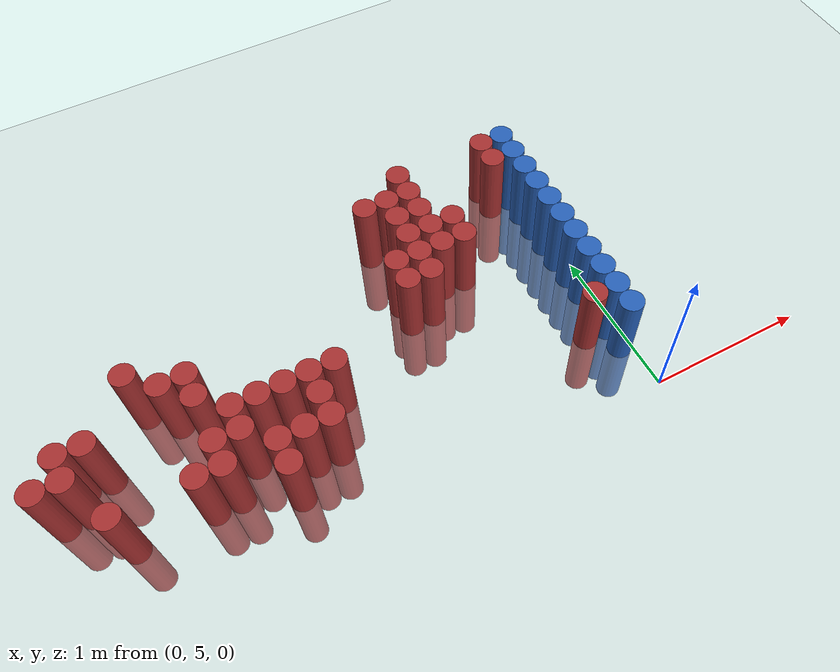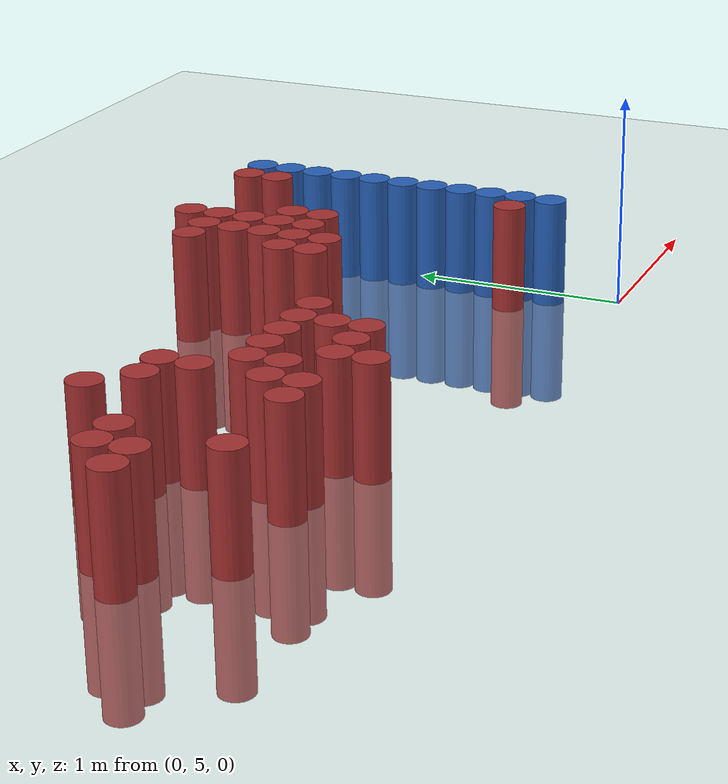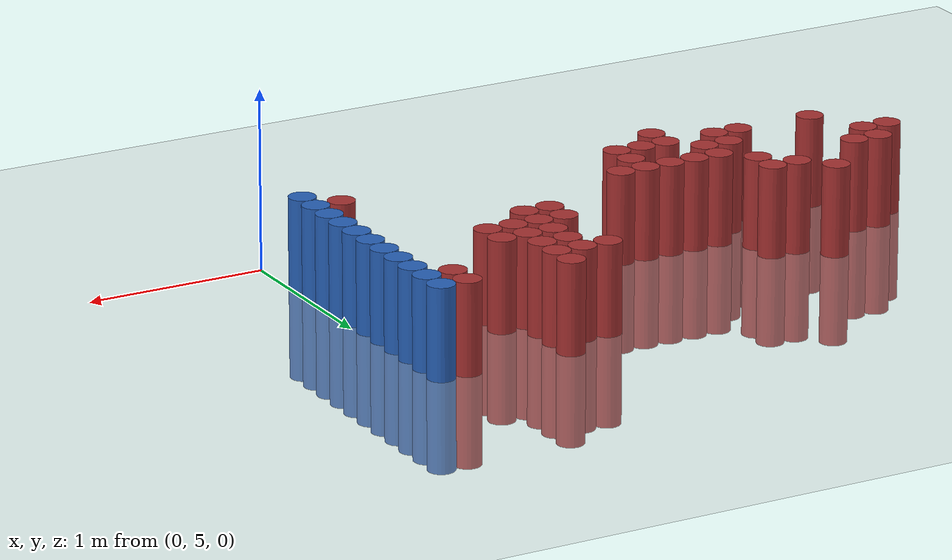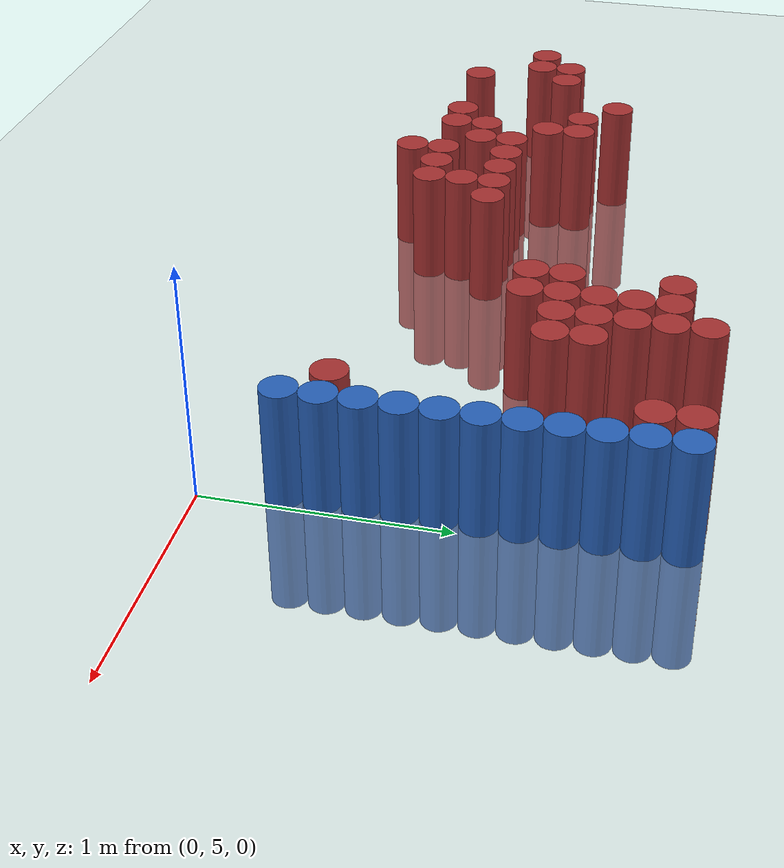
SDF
<sdf version="1.6">
 <world name="default">
  <model name="ground_plane">
   <static>1</static>
   <link name="link">
    <collision name="collision">
     <geometry><plane><normal>0 0 1</normal><size>100 100</size></plane></geometry>
     <surface><friction><ode><mu>100</mu><mu2>50</mu2></ode></friction></surface>
    </collision>
    <visual name="visual">
     <cast_shadows>0</cast_shadows>
     <geometry><plane><normal>0 0 1</normal><size>100 100</size></plane></geometry>
     <material>
      <script><uri>file://media/materials/scripts/gazebo.material</uri><name>Gazebo/Grey</name></script>
     </material>
    </visual>
   </link>
  </model>
  <model name="unit_cylinder_152">
   <static>1</static>
   <pose>-3.375000 5.775000 0.000000 0.000000 0.000000 0.000000</pose>
   <link name="link">
    <inertial>
     <mass>1</mass>
     <inertia><ixx>0.145833</ixx><ixy>0</ixy><ixz>0</ixz><iyy>0.145833</iyy><iyz>0</iyz><izz>0.125</izz></inertia>
    </inertial>
    <collision name="collision">
     <geometry><cylinder><radius>0.075000</radius><length>1</length></cylinder></geometry>
    </collision>
    <visual name="visual">
     <geometry><cylinder><radius>0.075000</radius><length>1</length></cylinder></geometry>
     <material>
      <ambient>0.648000 0.192000 0.192000 1</ambient>
      <diffuse>0.648000 0.192000 0.192000 1</diffuse>
     </material>
     <material>
      <script><name>Gazebo/Grey</name><uri>file://media/materials/scripts/gazebo.material</uri></script>
     </material>
    </visual>
   </link>
  </model>
  <model name="unit_cylinder_154">
   <static>1</static>
   <pose>-3.225000 5.775000 0.000000 0.000000 0.000000 0.000000</pose>
   <link name="link">
    <inertial>
     <mass>1</mass>
     <inertia><ixx>0.145833</ixx><ixy>0</ixy><ixz>0</ixz><iyy>0.145833</iyy><iyz>0</iyz><izz>0.125</izz></inertia>
    </inertial>
    <collision name="collision">
     <geometry><cylinder><radius>0.075000</radius><length>1</length></cylinder></geometry>
    </collision>
    <visual name="visual">
     <geometry><cylinder><radius>0.075000</radius><length>1</length></cylinder></geometry>
     <material>
      <ambient>0.648000 0.192000 0.192000 1</ambient>
      <diffuse>0.648000 0.192000 0.192000 1</diffuse>
     </material>
     <material>
      <script><name>Gazebo/Grey</name><uri>file://media/materials/scripts/gazebo.material</uri></script>
     </material>
    </visual>
   </link>
  </model>
  <model name="unit_cylinder_155">
   <static>1</static>
   <pose>-3.225000 5.925000 0.000000 0.000000 0.000000 0.000000</pose>
   <link name="link">
    <inertial>
     <mass>1</mass>
     <inertia><ixx>0.145833</ixx><ixy>0</ixy><ixz>0</ixz><iyy>0.145833</iyy><iyz>0</iyz><izz>0.125</izz></inertia>
    </inertial>
    <collision name="collision">
     <geometry><cylinder><radius>0.075000</radius><length>1</length></cylinder></geometry>
    </collision>
    <visual name="visual">
     <geometry><cylinder><radius>0.075000</radius><length>1</length></cylinder></geometry>
     <material>
      <ambient>0.648000 0.192000 0.192000 1</ambient>
      <diffuse>0.648000 0.192000 0.192000 1</diffuse>
     </material>
     <material>
      <script><name>Gazebo/Grey</name><uri>file://media/materials/scripts/gazebo.material</uri></script>
     </material>
    </visual>
   </link>
  </model>
  <model name="unit_cylinder_157">
   <static>1</static>
   <pose>-3.075000 5.475000 0.000000 0.000000 0.000000 0.000000</pose>
   <link name="link">
    <inertial>
     <mass>1</mass>
     <inertia><ixx>0.145833</ixx><ixy>0</ixy><ixz>0</ixz><iyy>0.145833</iyy><iyz>0</iyz><izz>0.125</izz></inertia>
    </inertial>
    <collision name="collision">
     <geometry><cylinder><radius>0.075000</radius><length>1</length></cylinder></geometry>
    </collision>
    <visual name="visual">
     <geometry><cylinder><radius>0.075000</radius><length>1</length></cylinder></geometry>
     <material>
      <ambient>0.648000 0.192000 0.192000 1</ambient>
      <diffuse>0.648000 0.192000 0.192000 1</diffuse>
     </material>
     <material>
      <script><name>Gazebo/Grey</name><uri>file://media/materials/scripts/gazebo.material</uri></script>
     </material>
    </visual>
   </link>
  </model>
  <model name="unit_cylinder_158">
   <static>1</static>
   <pose>-3.075000 5.925000 0.000000 0.000000 0.000000 0.000000</pose>
   <link name="link">
    <inertial>
     <mass>1</mass>
     <inertia><ixx>0.145833</ixx><ixy>0</ixy><ixz>0</ixz><iyy>0.145833</iyy><iyz>0</iyz><izz>0.125</izz></inertia>
    </inertial>
    <collision name="collision">
     <geometry><cylinder><radius>0.075000</radius><length>1</length></cylinder></geometry>
    </collision>
    <visual name="visual">
     <geometry><cylinder><radius>0.075000</radius><length>1</length></cylinder></geometry>
     <material>
      <ambient>0.648000 0.192000 0.192000 1</ambient>
      <diffuse>0.648000 0.192000 0.192000 1</diffuse>
     </material>
     <material>
      <script><name>Gazebo/Grey</name><uri>file://media/materials/scripts/gazebo.material</uri></script>
     </material>
    </visual>
   </link>
  </model>
  <model name="unit_cylinder_169">
   <static>1</static>
   <pose>-2.775000 6.225000 0.000000 0.000000 0.000000 0.000000</pose>
   <link name="link">
    <inertial>
     <mass>1</mass>
     <inertia><ixx>0.145833</ixx><ixy>0</ixy><ixz>0</ixz><iyy>0.145833</iyy><iyz>0</iyz><izz>0.125</izz></inertia>
    </inertial>
    <collision name="collision">
     <geometry><cylinder><radius>0.075000</radius><length>1</length></cylinder></geometry>
    </collision>
    <visual name="visual">
     <geometry><cylinder><radius>0.075000</radius><length>1</length></cylinder></geometry>
     <material>
      <ambient>0.648000 0.192000 0.192000 1</ambient>
      <diffuse>0.648000 0.192000 0.192000 1</diffuse>
     </material>
     <material>
      <script><name>Gazebo/Grey</name><uri>file://media/materials/scripts/gazebo.material</uri></script>
     </material>
    </visual>
   </link>
  </model>
  <model name="unit_cylinder_173">
   <static>1</static>
   <pose>-2.625000 5.475000 0.000000 0.000000 0.000000 0.000000</pose>
   <link name="link">
    <inertial>
     <mass>1</mass>
     <inertia><ixx>0.145833</ixx><ixy>0</ixy><ixz>0</ixz><iyy>0.145833</iyy><iyz>0</iyz><izz>0.125</izz></inertia>
    </inertial>
    <collision name="collision">
     <geometry><cylinder><radius>0.075000</radius><length>1</length></cylinder></geometry>
    </collision>
    <visual name="visual">
     <geometry><cylinder><radius>0.075000</radius><length>1</length></cylinder></geometry>
     <material>
      <ambient>0.648000 0.192000 0.192000 1</ambient>
      <diffuse>0.648000 0.192000 0.192000 1</diffuse>
     </material>
     <material>
      <script><name>Gazebo/Grey</name><uri>file://media/materials/scripts/gazebo.material</uri></script>
     </material>
    </visual>
   </link>
  </model>
  <model name="unit_cylinder_174">
   <static>1</static>
   <pose>-2.625000 6.075000 0.000000 0.000000 0.000000 0.000000</pose>
   <link name="link">
    <inertial>
     <mass>1</mass>
     <inertia><ixx>0.145833</ixx><ixy>0</ixy><ixz>0</ixz><iyy>0.145833</iyy><iyz>0</iyz><izz>0.125</izz></inertia>
    </inertial>
    <collision name="collision">
     <geometry><cylinder><radius>0.075000</radius><length>1</length></cylinder></geometry>
    </collision>
    <visual name="visual">
     <geometry><cylinder><radius>0.075000</radius><length>1</length></cylinder></geometry>
     <material>
      <ambient>0.648000 0.192000 0.192000 1</ambient>
      <diffuse>0.648000 0.192000 0.192000 1</diffuse>
     </material>
     <material>
      <script><name>Gazebo/Grey</name><uri>file://media/materials/scripts/gazebo.material</uri></script>
     </material>
    </visual>
   </link>
  </model>
  <model name="unit_cylinder_179">
   <static>1</static>
   <pose>-2.475000 5.475000 0.000000 0.000000 0.000000 0.000000</pose>
   <link name="link">
    <inertial>
     <mass>1</mass>
     <inertia><ixx>0.145833</ixx><ixy>0</ixy><ixz>0</ixz><iyy>0.145833</iyy><iyz>0</iyz><izz>0.125</izz></inertia>
    </inertial>
    <collision name="collision">
     <geometry><cylinder><radius>0.075000</radius><length>1</length></cylinder></geometry>
    </collision>
    <visual name="visual">
     <geometry><cylinder><radius>0.075000</radius><length>1</length></cylinder></geometry>
     <material>
      <ambient>0.648000 0.192000 0.192000 1</ambient>
      <diffuse>0.648000 0.192000 0.192000 1</diffuse>
     </material>
     <material>
      <script><name>Gazebo/Grey</name><uri>file://media/materials/scripts/gazebo.material</uri></script>
     </material>
    </visual>
   </link>
  </model>
  <model name="unit_cylinder_180">
   <static>1</static>
   <pose>-2.475000 5.625000 0.000000 0.000000 0.000000 0.000000</pose>
   <link name="link">
    <inertial>
     <mass>1</mass>
     <inertia><ixx>0.145833</ixx><ixy>0</ixy><ixz>0</ixz><iyy>0.145833</iyy><iyz>0</iyz><izz>0.125</izz></inertia>
    </inertial>
    <collision name="collision">
     <geometry><cylinder><radius>0.075000</radius><length>1</length></cylinder></geometry>
    </collision>
    <visual name="visual">
     <geometry><cylinder><radius>0.075000</radius><length>1</length></cylinder></geometry>
     <material>
      <ambient>0.648000 0.192000 0.192000 1</ambient>
      <diffuse>0.648000 0.192000 0.192000 1</diffuse>
     </material>
     <material>
      <script><name>Gazebo/Grey</name><uri>file://media/materials/scripts/gazebo.material</uri></script>
     </material>
    </visual>
   </link>
  </model>
  <model name="unit_cylinder_181">
   <static>1</static>
   <pose>-2.475000 5.925000 0.000000 0.000000 0.000000 0.000000</pose>
   <link name="link">
    <inertial>
     <mass>1</mass>
     <inertia><ixx>0.145833</ixx><ixy>0</ixy><ixz>0</ixz><iyy>0.145833</iyy><iyz>0</iyz><izz>0.125</izz></inertia>
    </inertial>
    <collision name="collision">
     <geometry><cylinder><radius>0.075000</radius><length>1</length></cylinder></geometry>
    </collision>
    <visual name="visual">
     <geometry><cylinder><radius>0.075000</radius><length>1</length></cylinder></geometry>
     <material>
      <ambient>0.648000 0.192000 0.192000 1</ambient>
      <diffuse>0.648000 0.192000 0.192000 1</diffuse>
     </material>
     <material>
      <script><name>Gazebo/Grey</name><uri>file://media/materials/scripts/gazebo.material</uri></script>
     </material>
    </visual>
   </link>
  </model>
  <model name="unit_cylinder_182">
   <static>1</static>
   <pose>-2.475000 6.075000 0.000000 0.000000 0.000000 0.000000</pose>
   <link name="link">
    <inertial>
     <mass>1</mass>
     <inertia><ixx>0.145833</ixx><ixy>0</ixy><ixz>0</ixz><iyy>0.145833</iyy><iyz>0</iyz><izz>0.125</izz></inertia>
    </inertial>
    <collision name="collision">
     <geometry><cylinder><radius>0.075000</radius><length>1</length></cylinder></geometry>
    </collision>
    <visual name="visual">
     <geometry><cylinder><radius>0.075000</radius><length>1</length></cylinder></geometry>
     <material>
      <ambient>0.648000 0.192000 0.192000 1</ambient>
      <diffuse>0.648000 0.192000 0.192000 1</diffuse>
     </material>
     <material>
      <script><name>Gazebo/Grey</name><uri>file://media/materials/scripts/gazebo.material</uri></script>
     </material>
    </visual>
   </link>
  </model>
  <model name="unit_cylinder_187">
   <static>1</static>
   <pose>-2.325000 5.625000 0.000000 0.000000 0.000000 0.000000</pose>
   <link name="link">
    <inertial>
     <mass>1</mass>
     <inertia><ixx>0.145833</ixx><ixy>0</ixy><ixz>0</ixz><iyy>0.145833</iyy><iyz>0</iyz><izz>0.125</izz></inertia>
    </inertial>
    <collision name="collision">
     <geometry><cylinder><radius>0.075000</radius><length>1</length></cylinder></geometry>
    </collision>
    <visual name="visual">
     <geometry><cylinder><radius>0.075000</radius><length>1</length></cylinder></geometry>
     <material>
      <ambient>0.648000 0.192000 0.192000 1</ambient>
      <diffuse>0.648000 0.192000 0.192000 1</diffuse>
     </material>
     <material>
      <script><name>Gazebo/Grey</name><uri>file://media/materials/scripts/gazebo.material</uri></script>
     </material>
    </visual>
   </link>
  </model>
  <model name="unit_cylinder_188">
   <static>1</static>
   <pose>-2.325000 5.775000 0.000000 0.000000 0.000000 0.000000</pose>
   <link name="link">
    <inertial>
     <mass>1</mass>
     <inertia><ixx>0.145833</ixx><ixy>0</ixy><ixz>0</ixz><iyy>0.145833</iyy><iyz>0</iyz><izz>0.125</izz></inertia>
    </inertial>
    <collision name="collision">
     <geometry><cylinder><radius>0.075000</radius><length>1</length></cylinder></geometry>
    </collision>
    <visual name="visual">
     <geometry><cylinder><radius>0.075000</radius><length>1</length></cylinder></geometry>
     <material>
      <ambient>0.648000 0.192000 0.192000 1</ambient>
      <diffuse>0.648000 0.192000 0.192000 1</diffuse>
     </material>
     <material>
      <script><name>Gazebo/Grey</name><uri>file://media/materials/scripts/gazebo.material</uri></script>
     </material>
    </visual>
   </link>
  </model>
  <model name="unit_cylinder_190">
   <static>1</static>
   <pose>-2.175000 5.325000 0.000000 0.000000 0.000000 0.000000</pose>
   <link name="link">
    <inertial>
     <mass>1</mass>
     <inertia><ixx>0.145833</ixx><ixy>0</ixy><ixz>0</ixz><iyy>0.145833</iyy><iyz>0</iyz><izz>0.125</izz></inertia>
    </inertial>
    <collision name="collision">
     <geometry><cylinder><radius>0.075000</radius><length>1</length></cylinder></geometry>
    </collision>
    <visual name="visual">
     <geometry><cylinder><radius>0.075000</radius><length>1</length></cylinder></geometry>
     <material>
      <ambient>0.648000 0.192000 0.192000 1</ambient>
      <diffuse>0.648000 0.192000 0.192000 1</diffuse>
     </material>
     <material>
      <script><name>Gazebo/Grey</name><uri>file://media/materials/scripts/gazebo.material</uri></script>
     </material>
    </visual>
   </link>
  </model>
  <model name="unit_cylinder_191">
   <static>1</static>
   <pose>-2.175000 5.475000 0.000000 0.000000 0.000000 0.000000</pose>
   <link name="link">
    <inertial>
     <mass>1</mass>
     <inertia><ixx>0.145833</ixx><ixy>0</ixy><ixz>0</ixz><iyy>0.145833</iyy><iyz>0</iyz><izz>0.125</izz></inertia>
    </inertial>
    <collision name="collision">
     <geometry><cylinder><radius>0.075000</radius><length>1</length></cylinder></geometry>
    </collision>
    <visual name="visual">
     <geometry><cylinder><radius>0.075000</radius><length>1</length></cylinder></geometry>
     <material>
      <ambient>0.648000 0.192000 0.192000 1</ambient>
      <diffuse>0.648000 0.192000 0.192000 1</diffuse>
     </material>
     <material>
      <script><name>Gazebo/Grey</name><uri>file://media/materials/scripts/gazebo.material</uri></script>
     </material>
    </visual>
   </link>
  </model>
  <model name="unit_cylinder_192">
   <static>1</static>
   <pose>-2.175000 5.775000 0.000000 0.000000 0.000000 0.000000</pose>
   <link name="link">
    <inertial>
     <mass>1</mass>
     <inertia><ixx>0.145833</ixx><ixy>0</ixy><ixz>0</ixz><iyy>0.145833</iyy><iyz>0</iyz><izz>0.125</izz></inertia>
    </inertial>
    <collision name="collision">
     <geometry><cylinder><radius>0.075000</radius><length>1</length></cylinder></geometry>
    </collision>
    <visual name="visual">
     <geometry><cylinder><radius>0.075000</radius><length>1</length></cylinder></geometry>
     <material>
      <ambient>0.648000 0.192000 0.192000 1</ambient>
      <diffuse>0.648000 0.192000 0.192000 1</diffuse>
     </material>
     <material>
      <script><name>Gazebo/Grey</name><uri>file://media/materials/scripts/gazebo.material</uri></script>
     </material>
    </visual>
   </link>
  </model>
  <model name="unit_cylinder_193">
   <static>1</static>
   <pose>-2.025000 5.475000 0.000000 0.000000 0.000000 0.000000</pose>
   <link name="link">
    <inertial>
     <mass>1</mass>
     <inertia><ixx>0.145833</ixx><ixy>0</ixy><ixz>0</ixz><iyy>0.145833</iyy><iyz>0</iyz><izz>0.125</izz></inertia>
    </inertial>
    <collision name="collision">
     <geometry><cylinder><radius>0.075000</radius><length>1</length></cylinder></geometry>
    </collision>
    <visual name="visual">
     <geometry><cylinder><radius>0.075000</radius><length>1</length></cylinder></geometry>
     <material>
      <ambient>0.648000 0.192000 0.192000 1</ambient>
      <diffuse>0.648000 0.192000 0.192000 1</diffuse>
     </material>
     <material>
      <script><name>Gazebo/Grey</name><uri>file://media/materials/scripts/gazebo.material</uri></script>
     </material>
    </visual>
   </link>
  </model>
  <model name="unit_cylinder_194">
   <static>1</static>
   <pose>-2.025000 5.775000 0.000000 0.000000 0.000000 0.000000</pose>
   <link name="link">
    <inertial>
     <mass>1</mass>
     <inertia><ixx>0.145833</ixx><ixy>0</ixy><ixz>0</ixz><iyy>0.145833</iyy><iyz>0</iyz><izz>0.125</izz></inertia>
    </inertial>
    <collision name="collision">
     <geometry><cylinder><radius>0.075000</radius><length>1</length></cylinder></geometry>
    </collision>
    <visual name="visual">
     <geometry><cylinder><radius>0.075000</radius><length>1</length></cylinder></geometry>
     <material>
      <ambient>0.648000 0.192000 0.192000 1</ambient>
      <diffuse>0.648000 0.192000 0.192000 1</diffuse>
     </material>
     <material>
      <script><name>Gazebo/Grey</name><uri>file://media/materials/scripts/gazebo.material</uri></script>
     </material>
    </visual>
   </link>
  </model>
  <model name="unit_cylinder_195">
   <static>1</static>
   <pose>-1.875000 5.475000 0.000000 0.000000 0.000000 0.000000</pose>
   <link name="link">
    <inertial>
     <mass>1</mass>
     <inertia><ixx>0.145833</ixx><ixy>0</ixy><ixz>0</ixz><iyy>0.145833</iyy><iyz>0</iyz><izz>0.125</izz></inertia>
    </inertial>
    <collision name="collision">
     <geometry><cylinder><radius>0.075000</radius><length>1</length></cylinder></geometry>
    </collision>
    <visual name="visual">
     <geometry><cylinder><radius>0.075000</radius><length>1</length></cylinder></geometry>
     <material>
      <ambient>0.648000 0.192000 0.192000 1</ambient>
      <diffuse>0.648000 0.192000 0.192000 1</diffuse>
     </material>
     <material>
      <script><name>Gazebo/Grey</name><uri>file://media/materials/scripts/gazebo.material</uri></script>
     </material>
    </visual>
   </link>
  </model>
  <model name="unit_cylinder_196">
   <static>1</static>
   <pose>-1.875000 5.625000 0.000000 0.000000 0.000000 0.000000</pose>
   <link name="link">
    <inertial>
     <mass>1</mass>
     <inertia><ixx>0.145833</ixx><ixy>0</ixy><ixz>0</ixz><iyy>0.145833</iyy><iyz>0</iyz><izz>0.125</izz></inertia>
    </inertial>
    <collision name="collision">
     <geometry><cylinder><radius>0.075000</radius><length>1</length></cylinder></geometry>
    </collision>
    <visual name="visual">
     <geometry><cylinder><radius>0.075000</radius><length>1</length></cylinder></geometry>
     <material>
      <ambient>0.648000 0.192000 0.192000 1</ambient>
      <diffuse>0.648000 0.192000 0.192000 1</diffuse>
     </material>
     <material>
      <script><name>Gazebo/Grey</name><uri>file://media/materials/scripts/gazebo.material</uri></script>
     </material>
    </visual>
   </link>
  </model>
  <model name="unit_cylinder_197">
   <static>1</static>
   <pose>-1.875000 5.775000 0.000000 0.000000 0.000000 0.000000</pose>
   <link name="link">
    <inertial>
     <mass>1</mass>
     <inertia><ixx>0.145833</ixx><ixy>0</ixy><ixz>0</ixz><iyy>0.145833</iyy><iyz>0</iyz><izz>0.125</izz></inertia>
    </inertial>
    <collision name="collision">
     <geometry><cylinder><radius>0.075000</radius><length>1</length></cylinder></geometry>
    </collision>
    <visual name="visual">
     <geometry><cylinder><radius>0.075000</radius><length>1</length></cylinder></geometry>
     <material>
      <ambient>0.648000 0.192000 0.192000 1</ambient>
      <diffuse>0.648000 0.192000 0.192000 1</diffuse>
     </material>
     <material>
      <script><name>Gazebo/Grey</name><uri>file://media/materials/scripts/gazebo.material</uri></script>
     </material>
    </visual>
   </link>
  </model>
  <model name="unit_cylinder_198">
   <static>1</static>
   <pose>-1.725000 5.775000 0.000000 0.000000 0.000000 0.000000</pose>
   <link name="link">
    <inertial>
     <mass>1</mass>
     <inertia><ixx>0.145833</ixx><ixy>0</ixy><ixz>0</ixz><iyy>0.145833</iyy><iyz>0</iyz><izz>0.125</izz></inertia>
    </inertial>
    <collision name="collision">
     <geometry><cylinder><radius>0.075000</radius><length>1</length></cylinder></geometry>
    </collision>
    <visual name="visual">
     <geometry><cylinder><radius>0.075000</radius><length>1</length></cylinder></geometry>
     <material>
      <ambient>0.648000 0.192000 0.192000 1</ambient>
      <diffuse>0.648000 0.192000 0.192000 1</diffuse>
     </material>
     <material>
      <script><name>Gazebo/Grey</name><uri>file://media/materials/scripts/gazebo.material</uri></script>
     </material>
    </visual>
   </link>
  </model>
  <model name="unit_cylinder_199">
   <static>1</static>
   <pose>-1.125000 6.075000 0.000000 0.000000 0.000000 0.000000</pose>
   <link name="link">
    <inertial>
     <mass>1</mass>
     <inertia><ixx>0.145833</ixx><ixy>0</ixy><ixz>0</ixz><iyy>0.145833</iyy><iyz>0</iyz><izz>0.125</izz></inertia>
    </inertial>
    <collision name="collision">
     <geometry><cylinder><radius>0.075000</radius><length>1</length></cylinder></geometry>
    </collision>
    <visual name="visual">
     <geometry><cylinder><radius>0.075000</radius><length>1</length></cylinder></geometry>
     <material>
      <ambient>0.648000 0.192000 0.192000 1</ambient>
      <diffuse>0.648000 0.192000 0.192000 1</diffuse>
     </material>
     <material>
      <script><name>Gazebo/Grey</name><uri>file://media/materials/scripts/gazebo.material</uri></script>
     </material>
    </visual>
   </link>
  </model>
  <model name="unit_cylinder_200">
   <static>1</static>
   <pose>-1.125000 6.225000 0.000000 0.000000 0.000000 0.000000</pose>
   <link name="link">
    <inertial>
     <mass>1</mass>
     <inertia><ixx>0.145833</ixx><ixy>0</ixy><ixz>0</ixz><iyy>0.145833</iyy><iyz>0</iyz><izz>0.125</izz></inertia>
    </inertial>
    <collision name="collision">
     <geometry><cylinder><radius>0.075000</radius><length>1</length></cylinder></geometry>
    </collision>
    <visual name="visual">
     <geometry><cylinder><radius>0.075000</radius><length>1</length></cylinder></geometry>
     <material>
      <ambient>0.648000 0.192000 0.192000 1</ambient>
      <diffuse>0.648000 0.192000 0.192000 1</diffuse>
     </material>
     <material>
      <script><name>Gazebo/Grey</name><uri>file://media/materials/scripts/gazebo.material</uri></script>
     </material>
    </visual>
   </link>
  </model>
  <model name="unit_cylinder_201">
   <static>1</static>
   <pose>-1.125000 6.675000 0.000000 0.000000 0.000000 0.000000</pose>
   <link name="link">
    <inertial>
     <mass>1</mass>
     <inertia><ixx>0.145833</ixx><ixy>0</ixy><ixz>0</ixz><iyy>0.145833</iyy><iyz>0</iyz><izz>0.125</izz></inertia>
    </inertial>
    <collision name="collision">
     <geometry><cylinder><radius>0.075000</radius><length>1</length></cylinder></geometry>
    </collision>
    <visual name="visual">
     <geometry><cylinder><radius>0.075000</radius><length>1</length></cylinder></geometry>
     <material>
      <ambient>0.648000 0.192000 0.192000 1</ambient>
      <diffuse>0.648000 0.192000 0.192000 1</diffuse>
     </material>
     <material>
      <script><name>Gazebo/Grey</name><uri>file://media/materials/scripts/gazebo.material</uri></script>
     </material>
    </visual>
   </link>
  </model>
  <model name="unit_cylinder_203">
   <static>1</static>
   <pose>-0.975000 6.075000 0.000000 0.000000 0.000000 0.000000</pose>
   <link name="link">
    <inertial>
     <mass>1</mass>
     <inertia><ixx>0.145833</ixx><ixy>0</ixy><ixz>0</ixz><iyy>0.145833</iyy><iyz>0</iyz><izz>0.125</izz></inertia>
    </inertial>
    <collision name="collision">
     <geometry><cylinder><radius>0.075000</radius><length>1</length></cylinder></geometry>
    </collision>
    <visual name="visual">
     <geometry><cylinder><radius>0.075000</radius><length>1</length></cylinder></geometry>
     <material>
      <ambient>0.648000 0.192000 0.192000 1</ambient>
      <diffuse>0.648000 0.192000 0.192000 1</diffuse>
     </material>
     <material>
      <script><name>Gazebo/Grey</name><uri>file://media/materials/scripts/gazebo.material</uri></script>
     </material>
    </visual>
   </link>
  </model>
  <model name="unit_cylinder_204">
   <static>1</static>
   <pose>-0.975000 6.225000 0.000000 0.000000 0.000000 0.000000</pose>
   <link name="link">
    <inertial>
     <mass>1</mass>
     <inertia><ixx>0.145833</ixx><ixy>0</ixy><ixz>0</ixz><iyy>0.145833</iyy><iyz>0</iyz><izz>0.125</izz></inertia>
    </inertial>
    <collision name="collision">
     <geometry><cylinder><radius>0.075000</radius><length>1</length></cylinder></geometry>
    </collision>
    <visual name="visual">
     <geometry><cylinder><radius>0.075000</radius><length>1</length></cylinder></geometry>
     <material>
      <ambient>0.648000 0.192000 0.192000 1</ambient>
      <diffuse>0.648000 0.192000 0.192000 1</diffuse>
     </material>
     <material>
      <script><name>Gazebo/Grey</name><uri>file://media/materials/scripts/gazebo.material</uri></script>
     </material>
    </visual>
   </link>
  </model>
  <model name="unit_cylinder_205">
   <static>1</static>
   <pose>-0.975000 6.375000 0.000000 0.000000 0.000000 0.000000</pose>
   <link name="link">
    <inertial>
     <mass>1</mass>
     <inertia><ixx>0.145833</ixx><ixy>0</ixy><ixz>0</ixz><iyy>0.145833</iyy><iyz>0</iyz><izz>0.125</izz></inertia>
    </inertial>
    <collision name="collision">
     <geometry><cylinder><radius>0.075000</radius><length>1</length></cylinder></geometry>
    </collision>
    <visual name="visual">
     <geometry><cylinder><radius>0.075000</radius><length>1</length></cylinder></geometry>
     <material>
      <ambient>0.648000 0.192000 0.192000 1</ambient>
      <diffuse>0.648000 0.192000 0.192000 1</diffuse>
     </material>
     <material>
      <script><name>Gazebo/Grey</name><uri>file://media/materials/scripts/gazebo.material</uri></script>
     </material>
    </visual>
   </link>
  </model>
  <model name="unit_cylinder_206">
   <static>1</static>
   <pose>-0.975000 6.525000 0.000000 0.000000 0.000000 0.000000</pose>
   <link name="link">
    <inertial>
     <mass>1</mass>
     <inertia><ixx>0.145833</ixx><ixy>0</ixy><ixz>0</ixz><iyy>0.145833</iyy><iyz>0</iyz><izz>0.125</izz></inertia>
    </inertial>
    <collision name="collision">
     <geometry><cylinder><radius>0.075000</radius><length>1</length></cylinder></geometry>
    </collision>
    <visual name="visual">
     <geometry><cylinder><radius>0.075000</radius><length>1</length></cylinder></geometry>
     <material>
      <ambient>0.648000 0.192000 0.192000 1</ambient>
      <diffuse>0.648000 0.192000 0.192000 1</diffuse>
     </material>
     <material>
      <script><name>Gazebo/Grey</name><uri>file://media/materials/scripts/gazebo.material</uri></script>
     </material>
    </visual>
   </link>
  </model>
  <model name="unit_cylinder_207">
   <static>1</static>
   <pose>-0.975000 6.675000 0.000000 0.000000 0.000000 0.000000</pose>
   <link name="link">
    <inertial>
     <mass>1</mass>
     <inertia><ixx>0.145833</ixx><ixy>0</ixy><ixz>0</ixz><iyy>0.145833</iyy><iyz>0</iyz><izz>0.125</izz></inertia>
    </inertial>
    <collision name="collision">
     <geometry><cylinder><radius>0.075000</radius><length>1</length></cylinder></geometry>
    </collision>
    <visual name="visual">
     <geometry><cylinder><radius>0.075000</radius><length>1</length></cylinder></geometry>
     <material>
      <ambient>0.648000 0.192000 0.192000 1</ambient>
      <diffuse>0.648000 0.192000 0.192000 1</diffuse>
     </material>
     <material>
      <script><name>Gazebo/Grey</name><uri>file://media/materials/scripts/gazebo.material</uri></script>
     </material>
    </visual>
   </link>
  </model>
  <model name="unit_cylinder_210">
   <static>1</static>
   <pose>-0.825000 6.225000 0.000000 0.000000 0.000000 0.000000</pose>
   <link name="link">
    <inertial>
     <mass>1</mass>
     <inertia><ixx>0.145833</ixx><ixy>0</ixy><ixz>0</ixz><iyy>0.145833</iyy><iyz>0</iyz><izz>0.125</izz></inertia>
    </inertial>
    <collision name="collision">
     <geometry><cylinder><radius>0.075000</radius><length>1</length></cylinder></geometry>
    </collision>
    <visual name="visual">
     <geometry><cylinder><radius>0.075000</radius><length>1</length></cylinder></geometry>
     <material>
      <ambient>0.648000 0.192000 0.192000 1</ambient>
      <diffuse>0.648000 0.192000 0.192000 1</diffuse>
     </material>
     <material>
      <script><name>Gazebo/Grey</name><uri>file://media/materials/scripts/gazebo.material</uri></script>
     </material>
    </visual>
   </link>
  </model>
  <model name="unit_cylinder_211">
   <static>1</static>
   <pose>-0.825000 6.375000 0.000000 0.000000 0.000000 0.000000</pose>
   <link name="link">
    <inertial>
     <mass>1</mass>
     <inertia><ixx>0.145833</ixx><ixy>0</ixy><ixz>0</ixz><iyy>0.145833</iyy><iyz>0</iyz><izz>0.125</izz></inertia>
    </inertial>
    <collision name="collision">
     <geometry><cylinder><radius>0.075000</radius><length>1</length></cylinder></geometry>
    </collision>
    <visual name="visual">
     <geometry><cylinder><radius>0.075000</radius><length>1</length></cylinder></geometry>
     <material>
      <ambient>0.648000 0.192000 0.192000 1</ambient>
      <diffuse>0.648000 0.192000 0.192000 1</diffuse>
     </material>
     <material>
      <script><name>Gazebo/Grey</name><uri>file://media/materials/scripts/gazebo.material</uri></script>
     </material>
    </visual>
   </link>
  </model>
  <model name="unit_cylinder_212">
   <static>1</static>
   <pose>-0.825000 6.525000 0.000000 0.000000 0.000000 0.000000</pose>
   <link name="link">
    <inertial>
     <mass>1</mass>
     <inertia><ixx>0.145833</ixx><ixy>0</ixy><ixz>0</ixz><iyy>0.145833</iyy><iyz>0</iyz><izz>0.125</izz></inertia>
    </inertial>
    <collision name="collision">
     <geometry><cylinder><radius>0.075000</radius><length>1</length></cylinder></geometry>
    </collision>
    <visual name="visual">
     <geometry><cylinder><radius>0.075000</radius><length>1</length></cylinder></geometry>
     <material>
      <ambient>0.648000 0.192000 0.192000 1</ambient>
      <diffuse>0.648000 0.192000 0.192000 1</diffuse>
     </material>
     <material>
      <script><name>Gazebo/Grey</name><uri>file://media/materials/scripts/gazebo.material</uri></script>
     </material>
    </visual>
   </link>
  </model>
  <model name="unit_cylinder_213">
   <static>1</static>
   <pose>-0.825000 6.675000 0.000000 0.000000 0.000000 0.000000</pose>
   <link name="link">
    <inertial>
     <mass>1</mass>
     <inertia><ixx>0.145833</ixx><ixy>0</ixy><ixz>0</ixz><iyy>0.145833</iyy><iyz>0</iyz><izz>0.125</izz></inertia>
    </inertial>
    <collision name="collision">
     <geometry><cylinder><radius>0.075000</radius><length>1</length></cylinder></geometry>
    </collision>
    <visual name="visual">
     <geometry><cylinder><radius>0.075000</radius><length>1</length></cylinder></geometry>
     <material>
      <ambient>0.648000 0.192000 0.192000 1</ambient>
      <diffuse>0.648000 0.192000 0.192000 1</diffuse>
     </material>
     <material>
      <script><name>Gazebo/Grey</name><uri>file://media/materials/scripts/gazebo.material</uri></script>
     </material>
    </visual>
   </link>
  </model>
  <model name="unit_cylinder_214">
   <static>1</static>
   <pose>-0.825000 6.825000 0.000000 0.000000 0.000000 0.000000</pose>
   <link name="link">
    <inertial>
     <mass>1</mass>
     <inertia><ixx>0.145833</ixx><ixy>0</ixy><ixz>0</ixz><iyy>0.145833</iyy><iyz>0</iyz><izz>0.125</izz></inertia>
    </inertial>
    <collision name="collision">
     <geometry><cylinder><radius>0.075000</radius><length>1</length></cylinder></geometry>
    </collision>
    <visual name="visual">
     <geometry><cylinder><radius>0.075000</radius><length>1</length></cylinder></geometry>
     <material>
      <ambient>0.648000 0.192000 0.192000 1</ambient>
      <diffuse>0.648000 0.192000 0.192000 1</diffuse>
     </material>
     <material>
      <script><name>Gazebo/Grey</name><uri>file://media/materials/scripts/gazebo.material</uri></script>
     </material>
    </visual>
   </link>
  </model>
  <model name="unit_cylinder_215">
   <static>1</static>
   <pose>-0.675000 6.225000 0.000000 0.000000 0.000000 0.000000</pose>
   <link name="link">
    <inertial>
     <mass>1</mass>
     <inertia><ixx>0.145833</ixx><ixy>0</ixy><ixz>0</ixz><iyy>0.145833</iyy><iyz>0</iyz><izz>0.125</izz></inertia>
    </inertial>
    <collision name="collision">
     <geometry><cylinder><radius>0.075000</radius><length>1</length></cylinder></geometry>
    </collision>
    <visual name="visual">
     <geometry><cylinder><radius>0.075000</radius><length>1</length></cylinder></geometry>
     <material>
      <ambient>0.648000 0.192000 0.192000 1</ambient>
      <diffuse>0.648000 0.192000 0.192000 1</diffuse>
     </material>
     <material>
      <script><name>Gazebo/Grey</name><uri>file://media/materials/scripts/gazebo.material</uri></script>
     </material>
    </visual>
   </link>
  </model>
  <model name="unit_cylinder_216">
   <static>1</static>
   <pose>-0.675000 6.375000 0.000000 0.000000 0.000000 0.000000</pose>
   <link name="link">
    <inertial>
     <mass>1</mass>
     <inertia><ixx>0.145833</ixx><ixy>0</ixy><ixz>0</ixz><iyy>0.145833</iyy><iyz>0</iyz><izz>0.125</izz></inertia>
    </inertial>
    <collision name="collision">
     <geometry><cylinder><radius>0.075000</radius><length>1</length></cylinder></geometry>
    </collision>
    <visual name="visual">
     <geometry><cylinder><radius>0.075000</radius><length>1</length></cylinder></geometry>
     <material>
      <ambient>0.648000 0.192000 0.192000 1</ambient>
      <diffuse>0.648000 0.192000 0.192000 1</diffuse>
     </material>
     <material>
      <script><name>Gazebo/Grey</name><uri>file://media/materials/scripts/gazebo.material</uri></script>
     </material>
    </visual>
   </link>
  </model>
  <model name="unit_cylinder_218">
   <static>1</static>
   <pose>-0.225000 5.475000 0.000000 0.000000 0.000000 0.000000</pose>
   <link name="link">
    <inertial>
     <mass>1</mass>
     <inertia><ixx>0.145833</ixx><ixy>0</ixy><ixz>0</ixz><iyy>0.145833</iyy><iyz>0</iyz><izz>0.125</izz></inertia>
    </inertial>
    <collision name="collision">
     <geometry><cylinder><radius>0.075000</radius><length>1</length></cylinder></geometry>
    </collision>
    <visual name="visual">
     <geometry><cylinder><radius>0.075000</radius><length>1</length></cylinder></geometry>
     <material>
      <ambient>0.648000 0.192000 0.192000 1</ambient>
      <diffuse>0.648000 0.192000 0.192000 1</diffuse>
     </material>
     <material>
      <script><name>Gazebo/Grey</name><uri>file://media/materials/scripts/gazebo.material</uri></script>
     </material>
    </visual>
   </link>
  </model>
  <model name="unit_cylinder_219">
   <static>1</static>
   <pose>-0.225000 6.675000 0.000000 0.000000 0.000000 0.000000</pose>
   <link name="link">
    <inertial>
     <mass>1</mass>
     <inertia><ixx>0.145833</ixx><ixy>0</ixy><ixz>0</ixz><iyy>0.145833</iyy><iyz>0</iyz><izz>0.125</izz></inertia>
    </inertial>
    <collision name="collision">
     <geometry><cylinder><radius>0.075000</radius><length>1</length></cylinder></geometry>
    </collision>
    <visual name="visual">
     <geometry><cylinder><radius>0.075000</radius><length>1</length></cylinder></geometry>
     <material>
      <ambient>0.648000 0.192000 0.192000 1</ambient>
      <diffuse>0.648000 0.192000 0.192000 1</diffuse>
     </material>
     <material>
      <script><name>Gazebo/Grey</name><uri>file://media/materials/scripts/gazebo.material</uri></script>
     </material>
    </visual>
   </link>
  </model>
  <model name="unit_cylinder_220">
   <static>1</static>
   <pose>-0.225000 6.825000 0.000000 0.000000 0.000000 0.000000</pose>
   <link name="link">
    <inertial>
     <mass>1</mass>
     <inertia><ixx>0.145833</ixx><ixy>0</ixy><ixz>0</ixz><iyy>0.145833</iyy><iyz>0</iyz><izz>0.125</izz></inertia>
    </inertial>
    <collision name="collision">
     <geometry><cylinder><radius>0.075000</radius><length>1</length></cylinder></geometry>
    </collision>
    <visual name="visual">
     <geometry><cylinder><radius>0.075000</radius><length>1</length></cylinder></geometry>
     <material>
      <ambient>0.648000 0.192000 0.192000 1</ambient>
      <diffuse>0.648000 0.192000 0.192000 1</diffuse>
     </material>
     <material>
      <script><name>Gazebo/Grey</name><uri>file://media/materials/scripts/gazebo.material</uri></script>
     </material>
    </visual>
   </link>
  </model>
  <model name="unit_cylinder_235">
   <static>1</static>
   <pose>-0.075000 5.325000 0.000000 0.000000 0.000000 0.000000</pose>
   <link name="link">
    <inertial>
     <mass>1</mass>
     <inertia><ixx>0.145833</ixx><ixy>0</ixy><ixz>0</ixz><iyy>0.145833</iyy><iyz>0</iyz><izz>0.125</izz></inertia>
    </inertial>
    <collision name="collision">
     <geometry><cylinder><radius>0.075000</radius><length>1</length></cylinder></geometry>
    </collision>
    <visual name="visual">
     <geometry><cylinder><radius>0.075000</radius><length>1</length></cylinder></geometry>
     <material>
      <ambient>0.152000 0.379000 0.720000 1</ambient>
      <diffuse>0.152000 0.379000 0.720000 1</diffuse>
     </material>
     <material>
      <script><name>Gazebo/Grey</name><uri>file://media/materials/scripts/gazebo.material</uri></script>
     </material>
    </visual>
   </link>
  </model>
  <model name="unit_cylinder_236">
   <static>1</static>
   <pose>-0.075000 5.475000 0.000000 0.000000 0.000000 0.000000</pose>
   <link name="link">
    <inertial>
     <mass>1</mass>
     <inertia><ixx>0.145833</ixx><ixy>0</ixy><ixz>0</ixz><iyy>0.145833</iyy><iyz>0</iyz><izz>0.125</izz></inertia>
    </inertial>
    <collision name="collision">
     <geometry><cylinder><radius>0.075000</radius><length>1</length></cylinder></geometry>
    </collision>
    <visual name="visual">
     <geometry><cylinder><radius>0.075000</radius><length>1</length></cylinder></geometry>
     <material>
      <ambient>0.152000 0.379000 0.720000 1</ambient>
      <diffuse>0.152000 0.379000 0.720000 1</diffuse>
     </material>
     <material>
      <script><name>Gazebo/Grey</name><uri>file://media/materials/scripts/gazebo.material</uri></script>
     </material>
    </visual>
   </link>
  </model>
  <model name="unit_cylinder_237">
   <static>1</static>
   <pose>-0.075000 5.625000 0.000000 0.000000 0.000000 0.000000</pose>
   <link name="link">
    <inertial>
     <mass>1</mass>
     <inertia><ixx>0.145833</ixx><ixy>0</ixy><ixz>0</ixz><iyy>0.145833</iyy><iyz>0</iyz><izz>0.125</izz></inertia>
    </inertial>
    <collision name="collision">
     <geometry><cylinder><radius>0.075000</radius><length>1</length></cylinder></geometry>
    </collision>
    <visual name="visual">
     <geometry><cylinder><radius>0.075000</radius><length>1</length></cylinder></geometry>
     <material>
      <ambient>0.152000 0.379000 0.720000 1</ambient>
      <diffuse>0.152000 0.379000 0.720000 1</diffuse>
     </material>
     <material>
      <script><name>Gazebo/Grey</name><uri>file://media/materials/scripts/gazebo.material</uri></script>
     </material>
    </visual>
   </link>
  </model>
  <model name="unit_cylinder_238">
   <static>1</static>
   <pose>-0.075000 5.775000 0.000000 0.000000 0.000000 0.000000</pose>
   <link name="link">
    <inertial>
     <mass>1</mass>
     <inertia><ixx>0.145833</ixx><ixy>0</ixy><ixz>0</ixz><iyy>0.145833</iyy><iyz>0</iyz><izz>0.125</izz></inertia>
    </inertial>
    <collision name="collision">
     <geometry><cylinder><radius>0.075000</radius><length>1</length></cylinder></geometry>
    </collision>
    <visual name="visual">
     <geometry><cylinder><radius>0.075000</radius><length>1</length></cylinder></geometry>
     <material>
      <ambient>0.152000 0.379000 0.720000 1</ambient>
      <diffuse>0.152000 0.379000 0.720000 1</diffuse>
     </material>
     <material>
      <script><name>Gazebo/Grey</name><uri>file://media/materials/scripts/gazebo.material</uri></script>
     </material>
    </visual>
   </link>
  </model>
  <model name="unit_cylinder_239">
   <static>1</static>
   <pose>-0.075000 5.925000 0.000000 0.000000 0.000000 0.000000</pose>
   <link name="link">
    <inertial>
     <mass>1</mass>
     <inertia><ixx>0.145833</ixx><ixy>0</ixy><ixz>0</ixz><iyy>0.145833</iyy><iyz>0</iyz><izz>0.125</izz></inertia>
    </inertial>
    <collision name="collision">
     <geometry><cylinder><radius>0.075000</radius><length>1</length></cylinder></geometry>
    </collision>
    <visual name="visual">
     <geometry><cylinder><radius>0.075000</radius><length>1</length></cylinder></geometry>
     <material>
      <ambient>0.152000 0.379000 0.720000 1</ambient>
      <diffuse>0.152000 0.379000 0.720000 1</diffuse>
     </material>
     <material>
      <script><name>Gazebo/Grey</name><uri>file://media/materials/scripts/gazebo.material</uri></script>
     </material>
    </visual>
   </link>
  </model>
  <model name="unit_cylinder_240">
   <static>1</static>
   <pose>-0.075000 6.075000 0.000000 0.000000 0.000000 0.000000</pose>
   <link name="link">
    <inertial>
     <mass>1</mass>
     <inertia><ixx>0.145833</ixx><ixy>0</ixy><ixz>0</ixz><iyy>0.145833</iyy><iyz>0</iyz><izz>0.125</izz></inertia>
    </inertial>
    <collision name="collision">
     <geometry><cylinder><radius>0.075000</radius><length>1</length></cylinder></geometry>
    </collision>
    <visual name="visual">
     <geometry><cylinder><radius>0.075000</radius><length>1</length></cylinder></geometry>
     <material>
      <ambient>0.152000 0.379000 0.720000 1</ambient>
      <diffuse>0.152000 0.379000 0.720000 1</diffuse>
     </material>
     <material>
      <script><name>Gazebo/Grey</name><uri>file://media/materials/scripts/gazebo.material</uri></script>
     </material>
    </visual>
   </link>
  </model>
  <model name="unit_cylinder_241">
   <static>1</static>
   <pose>-0.075000 6.225000 0.000000 0.000000 0.000000 0.000000</pose>
   <link name="link">
    <inertial>
     <mass>1</mass>
     <inertia><ixx>0.145833</ixx><ixy>0</ixy><ixz>0</ixz><iyy>0.145833</iyy><iyz>0</iyz><izz>0.125</izz></inertia>
    </inertial>
    <collision name="collision">
     <geometry><cylinder><radius>0.075000</radius><length>1</length></cylinder></geometry>
    </collision>
    <visual name="visual">
     <geometry><cylinder><radius>0.075000</radius><length>1</length></cylinder></geometry>
     <material>
      <ambient>0.152000 0.379000 0.720000 1</ambient>
      <diffuse>0.152000 0.379000 0.720000 1</diffuse>
     </material>
     <material>
      <script><name>Gazebo/Grey</name><uri>file://media/materials/scripts/gazebo.material</uri></script>
     </material>
    </visual>
   </link>
  </model>
  <model name="unit_cylinder_242">
   <static>1</static>
   <pose>-0.075000 6.375000 0.000000 0.000000 0.000000 0.000000</pose>
   <link name="link">
    <inertial>
     <mass>1</mass>
     <inertia><ixx>0.145833</ixx><ixy>0</ixy><ixz>0</ixz><iyy>0.145833</iyy><iyz>0</iyz><izz>0.125</izz></inertia>
    </inertial>
    <collision name="collision">
     <geometry><cylinder><radius>0.075000</radius><length>1</length></cylinder></geometry>
    </collision>
    <visual name="visual">
     <geometry><cylinder><radius>0.075000</radius><length>1</length></cylinder></geometry>
     <material>
      <ambient>0.152000 0.379000 0.720000 1</ambient>
      <diffuse>0.152000 0.379000 0.720000 1</diffuse>
     </material>
     <material>
      <script><name>Gazebo/Grey</name><uri>file://media/materials/scripts/gazebo.material</uri></script>
     </material>
    </visual>
   </link>
  </model>
  <model name="unit_cylinder_243">
   <static>1</static>
   <pose>-0.075000 6.525000 0.000000 0.000000 0.000000 0.000000</pose>
   <link name="link">
    <inertial>
     <mass>1</mass>
     <inertia><ixx>0.145833</ixx><ixy>0</ixy><ixz>0</ixz><iyy>0.145833</iyy><iyz>0</iyz><izz>0.125</izz></inertia>
    </inertial>
    <collision name="collision">
     <geometry><cylinder><radius>0.075000</radius><length>1</length></cylinder></geometry>
    </collision>
    <visual name="visual">
     <geometry><cylinder><radius>0.075000</radius><length>1</length></cylinder></geometry>
     <material>
      <ambient>0.152000 0.379000 0.720000 1</ambient>
      <diffuse>0.152000 0.379000 0.720000 1</diffuse>
     </material>
     <material>
      <script><name>Gazebo/Grey</name><uri>file://media/materials/scripts/gazebo.material</uri></script>
     </material>
    </visual>
   </link>
  </model>
  <model name="unit_cylinder_244">
   <static>1</static>
   <pose>-0.075000 6.675000 0.000000 0.000000 0.000000 0.000000</pose>
   <link name="link">
    <inertial>
     <mass>1</mass>
     <inertia><ixx>0.145833</ixx><ixy>0</ixy><ixz>0</ixz><iyy>0.145833</iyy><iyz>0</iyz><izz>0.125</izz></inertia>
    </inertial>
    <collision name="collision">
     <geometry><cylinder><radius>0.075000</radius><length>1</length></cylinder></geometry>
    </collision>
    <visual name="visual">
     <geometry><cylinder><radius>0.075000</radius><length>1</length></cylinder></geometry>
     <material>
      <ambient>0.152000 0.379000 0.720000 1</ambient>
      <diffuse>0.152000 0.379000 0.720000 1</diffuse>
     </material>
     <material>
      <script><name>Gazebo/Grey</name><uri>file://media/materials/scripts/gazebo.material</uri></script>
     </material>
    </visual>
   </link>
  </model>
  <model name="unit_cylinder_245">
   <static>1</static>
   <pose>-0.075000 6.825000 0.000000 0.000000 0.000000 0.000000</pose>
   <link name="link">
    <inertial>
     <mass>1</mass>
     <inertia><ixx>0.145833</ixx><ixy>0</ixy><ixz>0</ixz><iyy>0.145833</iyy><iyz>0</iyz><izz>0.125</izz></inertia>
    </inertial>
    <collision name="collision">
     <geometry><cylinder><radius>0.075000</radius><length>1</length></cylinder></geometry>
    </collision>
    <visual name="visual">
     <geometry><cylinder><radius>0.075000</radius><length>1</length></cylinder></geometry>
     <material>
      <ambient>0.152000 0.379000 0.720000 1</ambient>
      <diffuse>0.152000 0.379000 0.720000 1</diffuse>
     </material>
     <material>
      <script><name>Gazebo/Grey</name><uri>file://media/materials/scripts/gazebo.material</uri></script>
     </material>
    </visual>
   </link>
  </model>
 </world>
</sdf>
